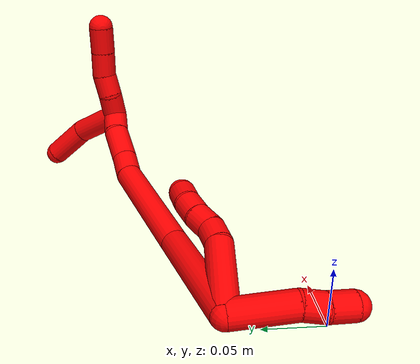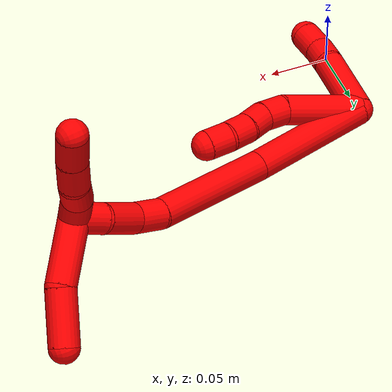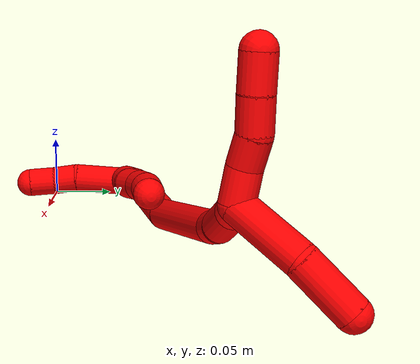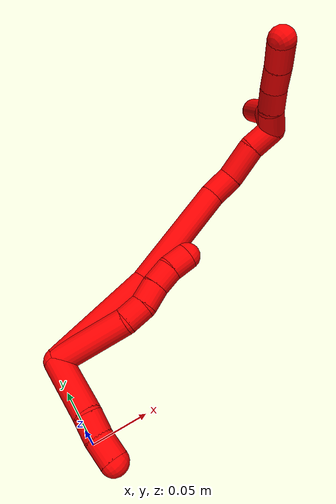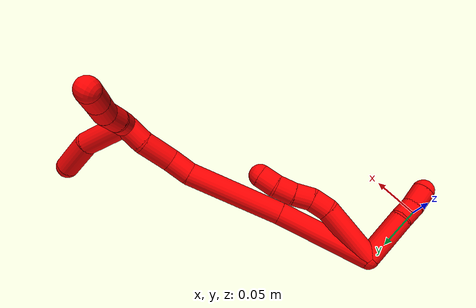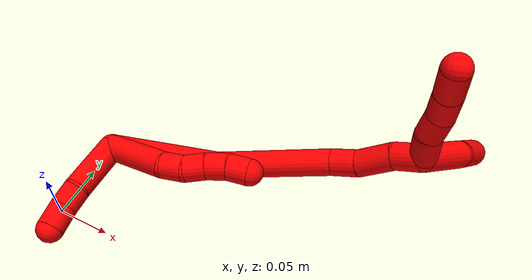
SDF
<sdf version="1.7">
 <world name="default">
  <model name="2">
   <static>0</static>
   <link name="2">
    <collision name="collision-cylinder-e_1_2_8">
     <pose>-0.012205 0.004741 0.031606 -0.148886 -0.364791 0.027511</pose>
     <geometry><cylinder><radius>0.0125</radius><length>0.068421</length></cylinder></geometry>
     <surface>
      <friction><ode><mu>1.16</mu><mu2>1.16</mu2><slip1>0</slip1><slip2>0</slip2></ode></friction>
      <contact><ode><kp>1e+06</kp><kd>1</kd><max_vel>0</max_vel><min_depth>0.001</min_depth></ode></contact>
     </surface>
    </collision>
    <visual name="visual-cylinder-e_1_2_8">
     <pose>-0.012205 0.004741 0.031606 -0.148886 -0.364791 0.027511</pose>
     <geometry><cylinder><radius>0.0125</radius><length>0.068421</length></cylinder></geometry>
     <material><ambient>1 0 0 1</ambient></material>
    </visual>
    <collision name="collision-cylinder-e_2_8_9">
     <pose>-0.025215 0.010417 0.073524 -0.090457 -0.077685 0.003518</pose>
     <geometry><cylinder><radius>0.0125</radius><length>0.020772</length></cylinder></geometry>
     <surface>
      <friction><ode><mu>1.16</mu><mu2>1.16</mu2><slip1>0</slip1><slip2>0</slip2></ode></friction>
      <contact><ode><kp>1e+06</kp><kd>1</kd><max_vel>0</max_vel><min_depth>0.001</min_depth></ode></contact>
     </surface>
    </collision>
    <visual name="visual-cylinder-e_2_8_9">
     <pose>-0.025215 0.010417 0.073524 -0.090457 -0.077685 0.003518</pose>
     <geometry><cylinder><radius>0.0125</radius><length>0.020772</length></cylinder></geometry>
     <material><ambient>1 0 0 1</ambient></material>
    </visual>
    <collision name="collision-cylinder-e_3_9_10">
     <pose>-0.023762 0.013431 0.093607 -0.209628 0.222455 -0.023498</pose>
     <geometry><cylinder><radius>0.0125</radius><length>0.020484</length></cylinder></geometry>
     <surface>
      <friction><ode><mu>1.16</mu><mu2>1.16</mu2><slip1>0</slip1><slip2>0</slip2></ode></friction>
      <contact><ode><kp>1e+06</kp><kd>1</kd><max_vel>0</max_vel><min_depth>0.001</min_depth></ode></contact>
     </surface>
    </collision>
    <visual name="visual-cylinder-e_3_9_10">
     <pose>-0.023762 0.013431 0.093607 -0.209628 0.222455 -0.023498</pose>
     <geometry><cylinder><radius>0.0125</radius><length>0.020484</length></cylinder></geometry>
     <material><ambient>1 0 0 1</ambient></material>
    </visual>
    <collision name="collision-cylinder-e_4_10_11">
     <pose>-0.020814 0.017077 0.113368 -0.155624 0.067905 -0.005297</pose>
     <geometry><cylinder><radius>0.0125</radius><length>0.020271</length></cylinder></geometry>
     <surface>
      <friction><ode><mu>1.16</mu><mu2>1.16</mu2><slip1>0</slip1><slip2>0</slip2></ode></friction>
      <contact><ode><kp>1e+06</kp><kd>1</kd><max_vel>0</max_vel><min_depth>0.001</min_depth></ode></contact>
     </surface>
    </collision>
    <visual name="visual-cylinder-e_4_10_11">
     <pose>-0.020814 0.017077 0.113368 -0.155624 0.067905 -0.005297</pose>
     <geometry><cylinder><radius>0.0125</radius><length>0.020271</length></cylinder></geometry>
     <material><ambient>1 0 0 1</ambient></material>
    </visual>
    <collision name="collision-cylinder-e_5_11_6">
     <pose>-0.020844 0.018422 0.133356 0.022287 -0.071597 -0.000798</pose>
     <geometry><cylinder><radius>0.0125</radius><length>0.020052</length></cylinder></geometry>
     <surface>
      <friction><ode><mu>1.16</mu><mu2>1.16</mu2><slip1>0</slip1><slip2>0</slip2></ode></friction>
      <contact><ode><kp>1e+06</kp><kd>1</kd><max_vel>0</max_vel><min_depth>0.001</min_depth></ode></contact>
     </surface>
    </collision>
    <visual name="visual-cylinder-e_5_11_6">
     <pose>-0.020844 0.018422 0.133356 0.022287 -0.071597 -0.000798</pose>
     <geometry><cylinder><radius>0.0125</radius><length>0.020052</length></cylinder></geometry>
     <material><ambient>1 0 0 1</ambient></material>
    </visual>
    <collision name="collision-cylinder-e_1_2_12">
     <pose>-0.026583 -0.007279 -0.005539 2.22133 -1.23941 -1.92733</pose>
     <geometry><cylinder><radius>0.0125</radius><length>0.056225</length></cylinder></geometry>
     <surface>
      <friction><ode><mu>1.16</mu><mu2>1.16</mu2><slip1>0</slip1><slip2>0</slip2></ode></friction>
      <contact><ode><kp>1e+06</kp><kd>1</kd><max_vel>0</max_vel><min_depth>0.001</min_depth></ode></contact>
     </surface>
    </collision>
    <visual name="visual-cylinder-e_1_2_12">
     <pose>-0.026583 -0.007279 -0.005539 2.22133 -1.23941 -1.92733</pose>
     <geometry><cylinder><radius>0.0125</radius><length>0.056225</length></cylinder></geometry>
     <material><ambient>1 0 0 1</ambient></material>
    </visual>
    <collision name="collision-cylinder-e_2_12_13">
     <pose>-0.061969 -0.019367 -0.013754 2.07842 -1.01208 -1.51149</pose>
     <geometry><cylinder><radius>0.0125</radius><length>0.020764</length></cylinder></geometry>
     <surface>
      <friction><ode><mu>1.16</mu><mu2>1.16</mu2><slip1>0</slip1><slip2>0</slip2></ode></friction>
      <contact><ode><kp>1e+06</kp><kd>1</kd><max_vel>0</max_vel><min_depth>0.001</min_depth></ode></contact>
     </surface>
    </collision>
    <visual name="visual-cylinder-e_2_12_13">
     <pose>-0.061969 -0.019367 -0.013754 2.07842 -1.01208 -1.51149</pose>
     <geometry><cylinder><radius>0.0125</radius><length>0.020764</length></cylinder></geometry>
     <material><ambient>1 0 0 1</ambient></material>
    </visual>
    <collision name="collision-cylinder-e_3_13_5">
     <pose>-0.081246 -0.028734 -0.01781 1.86496 -1.14407 -1.42948</pose>
     <geometry><cylinder><radius>0.0125</radius><length>0.023011</length></cylinder></geometry>
     <surface>
      <friction><ode><mu>1.16</mu><mu2>1.16</mu2><slip1>0</slip1><slip2>0</slip2></ode></friction>
      <contact><ode><kp>1e+06</kp><kd>1</kd><max_vel>0</max_vel><min_depth>0.001</min_depth></ode></contact>
     </surface>
    </collision>
    <visual name="visual-cylinder-e_3_13_5">
     <pose>-0.081246 -0.028734 -0.01781 1.86496 -1.14407 -1.42948</pose>
     <geometry><cylinder><radius>0.0125</radius><length>0.023011</length></cylinder></geometry>
     <material><ambient>1 0 0 1</ambient></material>
    </visual>
    <collision name="collision-cylinder-e_1_2_14">
     <pose>0.002924 -0.000577 0.053054 0.010874 0.055052 0.000299</pose>
     <geometry><cylinder><radius>0.0125</radius><length>0.106275</length></cylinder></geometry>
     <surface>
      <friction><ode><mu>1.16</mu><mu2>1.16</mu2><slip1>0</slip1><slip2>0</slip2></ode></friction>
      <contact><ode><kp>1e+06</kp><kd>1</kd><max_vel>0</max_vel><min_depth>0.001</min_depth></ode></contact>
     </surface>
    </collision>
    <visual name="visual-cylinder-e_1_2_14">
     <pose>0.002924 -0.000577 0.053054 0.010874 0.055052 0.000299</pose>
     <geometry><cylinder><radius>0.0125</radius><length>0.106275</length></cylinder></geometry>
     <material><ambient>1 0 0 1</ambient></material>
    </visual>
    <collision name="collision-cylinder-e_2_14_15">
     <pose>0.010079 0.00975 0.158779 -0.204126 0.078497 -0.008044</pose>
     <geometry><cylinder><radius>0.0125</radius><length>0.107909</length></cylinder></geometry>
     <surface>
      <friction><ode><mu>1.16</mu><mu2>1.16</mu2><slip1>0</slip1><slip2>0</slip2></ode></friction>
      <contact><ode><kp>1e+06</kp><kd>1</kd><max_vel>0</max_vel><min_depth>0.001</min_depth></ode></contact>
     </surface>
    </collision>
    <visual name="visual-cylinder-e_2_14_15">
     <pose>0.010079 0.00975 0.158779 -0.204126 0.078497 -0.008044</pose>
     <geometry><cylinder><radius>0.0125</radius><length>0.107909</length></cylinder></geometry>
     <material><ambient>1 0 0 1</ambient></material>
    </visual>
    <collision name="collision-cylinder-e_3_15_16">
     <pose>0.012383 0.024004 0.22345 -0.272338 -0.153415 0.021061</pose>
     <geometry><cylinder><radius>0.0125</radius><length>0.025213</length></cylinder></geometry>
     <surface>
      <friction><ode><mu>1.16</mu><mu2>1.16</mu2><slip1>0</slip1><slip2>0</slip2></ode></friction>
      <contact><ode><kp>1e+06</kp><kd>1</kd><max_vel>0</max_vel><min_depth>0.001</min_depth></ode></contact>
     </surface>
    </collision>
    <visual name="visual-cylinder-e_3_15_16">
     <pose>0.012383 0.024004 0.22345 -0.272338 -0.153415 0.021061</pose>
     <geometry><cylinder><radius>0.0125</radius><length>0.025213</length></cylinder></geometry>
     <material><ambient>1 0 0 1</ambient></material>
    </visual>
    <collision name="collision-cylinder-e_4_16_17">
     <pose>0.008235 0.036196 0.250255 -0.538302 -0.128114 0.035384</pose>
     <geometry><cylinder><radius>0.0125</radius><length>0.034774</length></cylinder></geometry>
     <surface>
      <friction><ode><mu>1.16</mu><mu2>1.16</mu2><slip1>0</slip1><slip2>0</slip2></ode></friction>
      <contact><ode><kp>1e+06</kp><kd>1</kd><max_vel>0</max_vel><min_depth>0.001</min_depth></ode></contact>
     </surface>
    </collision>
    <visual name="visual-cylinder-e_4_16_17">
     <pose>0.008235 0.036196 0.250255 -0.538302 -0.128114 0.035384</pose>
     <geometry><cylinder><radius>0.0125</radius><length>0.034774</length></cylinder></geometry>
     <material><ambient>1 0 0 1</ambient></material>
    </visual>
    <collision name="collision-cylinder-e_5_17_1">
     <pose>0.002226 0.049232 0.276673 -0.34668 -0.297718 0.052506</pose>
     <geometry><cylinder><radius>0.0125</radius><length>0.025829</length></cylinder></geometry>
     <surface>
      <friction><ode><mu>1.16</mu><mu2>1.16</mu2><slip1>0</slip1><slip2>0</slip2></ode></friction>
      <contact><ode><kp>1e+06</kp><kd>1</kd><max_vel>0</max_vel><min_depth>0.001</min_depth></ode></contact>
     </surface>
    </collision>
    <visual name="visual-cylinder-e_5_17_1">
     <pose>0.002226 0.049232 0.276673 -0.34668 -0.297718 0.052506</pose>
     <geometry><cylinder><radius>0.0125</radius><length>0.025829</length></cylinder></geometry>
     <material><ambient>1 0 0 1</ambient></material>
    </visual>
    <collision name="collision-cylinder-e_1_1_18">
     <pose>-0.003456 0.065913 0.288271 -1.57188 -0.150517 0.150679</pose>
     <geometry><cylinder><radius>0.0125</radius><length>0.025256</length></cylinder></geometry>
     <surface>
      <friction><ode><mu>1.16</mu><mu2>1.16</mu2><slip1>0</slip1><slip2>0</slip2></ode></friction>
      <contact><ode><kp>1e+06</kp><kd>1</kd><max_vel>0</max_vel><min_depth>0.001</min_depth></ode></contact>
     </surface>
    </collision>
    <visual name="visual-cylinder-e_1_1_18">
     <pose>-0.003456 0.065913 0.288271 -1.57188 -0.150517 0.150679</pose>
     <geometry><cylinder><radius>0.0125</radius><length>0.025256</length></cylinder></geometry>
     <material><ambient>1 0 0 1</ambient></material>
    </visual>
    <collision name="collision-cylinder-e_2_18_19">
     <pose>-0.006827 0.089194 0.290848 -1.3353 -0.13225 0.104329</pose>
     <geometry><cylinder><radius>0.0125</radius><length>0.022401</length></cylinder></geometry>
     <surface>
      <friction><ode><mu>1.16</mu><mu2>1.16</mu2><slip1>0</slip1><slip2>0</slip2></ode></friction>
      <contact><ode><kp>1e+06</kp><kd>1</kd><max_vel>0</max_vel><min_depth>0.001</min_depth></ode></contact>
     </surface>
    </collision>
    <visual name="visual-cylinder-e_2_18_19">
     <pose>-0.006827 0.089194 0.290848 -1.3353 -0.13225 0.104329</pose>
     <geometry><cylinder><radius>0.0125</radius><length>0.022401</length></cylinder></geometry>
     <material><ambient>1 0 0 1</ambient></material>
    </visual>
    <collision name="collision-cylinder-e_3_19_20">
     <pose>-0.012514 0.111936 0.294129 -1.51311 -0.338362 0.319716</pose>
     <geometry><cylinder><radius>0.0125</radius><length>0.025369</length></cylinder></geometry>
     <surface>
      <friction><ode><mu>1.16</mu><mu2>1.16</mu2><slip1>0</slip1><slip2>0</slip2></ode></friction>
      <contact><ode><kp>1e+06</kp><kd>1</kd><max_vel>0</max_vel><min_depth>0.001</min_depth></ode></contact>
     </surface>
    </collision>
    <visual name="visual-cylinder-e_3_19_20">
     <pose>-0.012514 0.111936 0.294129 -1.51311 -0.338362 0.319716</pose>
     <geometry><cylinder><radius>0.0125</radius><length>0.025369</length></cylinder></geometry>
     <material><ambient>1 0 0 1</ambient></material>
    </visual>
    <collision name="collision-cylinder-e_4_20_4">
     <pose>-0.020789 0.136741 0.294935 -1.5617 -0.306124 0.303395</pose>
     <geometry><cylinder><radius>0.0125</radius><length>0.026974</length></cylinder></geometry>
     <surface>
      <friction><ode><mu>1.16</mu><mu2>1.16</mu2><slip1>0</slip1><slip2>0</slip2></ode></friction>
      <contact><ode><kp>1e+06</kp><kd>1</kd><max_vel>0</max_vel><min_depth>0.001</min_depth></ode></contact>
     </surface>
    </collision>
    <visual name="visual-cylinder-e_4_20_4">
     <pose>-0.020789 0.136741 0.294935 -1.5617 -0.306124 0.303395</pose>
     <geometry><cylinder><radius>0.0125</radius><length>0.026974</length></cylinder></geometry>
     <material><ambient>1 0 0 1</ambient></material>
    </visual>
    <collision name="collision-cylinder-e_1_1_21">
     <pose>0.018397 0.045768 0.304923 0.43143 0.828319 0.192055</pose>
     <geometry><cylinder><radius>0.0125</radius><length>0.054181</length></cylinder></geometry>
     <surface>
      <friction><ode><mu>1.16</mu><mu2>1.16</mu2><slip1>0</slip1><slip2>0</slip2></ode></friction>
      <contact><ode><kp>1e+06</kp><kd>1</kd><max_vel>0</max_vel><min_depth>0.001</min_depth></ode></contact>
     </surface>
    </collision>
    <visual name="visual-cylinder-e_1_1_21">
     <pose>0.018397 0.045768 0.304923 0.43143 0.828319 0.192055</pose>
     <geometry><cylinder><radius>0.0125</radius><length>0.054181</length></cylinder></geometry>
     <material><ambient>1 0 0 1</ambient></material>
    </visual>
    <collision name="collision-cylinder-e_2_21_3">
     <pose>0.057413 0.028265 0.329613 0.885155 0.982283 0.496513</pose>
     <geometry><cylinder><radius>0.0125</radius><length>0.045819</length></cylinder></geometry>
     <surface>
      <friction><ode><mu>1.16</mu><mu2>1.16</mu2><slip1>0</slip1><slip2>0</slip2></ode></friction>
      <contact><ode><kp>1e+06</kp><kd>1</kd><max_vel>0</max_vel><min_depth>0.001</min_depth></ode></contact>
     </surface>
    </collision>
    <visual name="visual-cylinder-e_2_21_3">
     <pose>0.057413 0.028265 0.329613 0.885155 0.982283 0.496513</pose>
     <geometry><cylinder><radius>0.0125</radius><length>0.045819</length></cylinder></geometry>
     <material><ambient>1 0 0 1</ambient></material>
    </visual>
    <collision name="collision-sphere-3">
     <pose>0.076468 0.018421 0.337666 0 -0 0</pose>
     <geometry><sphere><radius>0.0125</radius></sphere></geometry>
     <surface>
      <friction><ode><mu>1.16</mu><mu2>1.16</mu2><slip1>0</slip1><slip2>0</slip2></ode></friction>
      <contact><ode><kp>1e+06</kp><kd>1</kd><max_vel>0</max_vel><min_depth>0.001</min_depth></ode></contact>
     </surface>
    </collision>
    <visual name="visual-sphere-3">
     <pose>0.076468 0.018421 0.337666 0 -0 0</pose>
     <geometry><sphere><radius>0.0125</radius></sphere></geometry>
     <material><ambient>1 0 0 1</ambient></material>
    </visual>
    <collision name="collision-sphere-21">
     <pose>0.038358 0.038109 0.321561 0 -0 0</pose>
     <geometry><sphere><radius>0.0125</radius></sphere></geometry>
     <surface>
      <friction><ode><mu>1.16</mu><mu2>1.16</mu2><slip1>0</slip1><slip2>0</slip2></ode></friction>
      <contact><ode><kp>1e+06</kp><kd>1</kd><max_vel>0</max_vel><min_depth>0.001</min_depth></ode></contact>
     </surface>
    </collision>
    <visual name="visual-sphere-21">
     <pose>0.038358 0.038109 0.321561 0 -0 0</pose>
     <geometry><sphere><radius>0.0125</radius></sphere></geometry>
     <material><ambient>1 0 0 1</ambient></material>
    </visual>
    <collision name="collision-sphere-4">
     <pose>-0.024854 0.1496 0.295052 0 -0 0</pose>
     <geometry><sphere><radius>0.0125</radius></sphere></geometry>
     <surface>
      <friction><ode><mu>1.16</mu><mu2>1.16</mu2><slip1>0</slip1><slip2>0</slip2></ode></friction>
      <contact><ode><kp>1e+06</kp><kd>1</kd><max_vel>0</max_vel><min_depth>0.001</min_depth></ode></contact>
     </surface>
    </collision>
    <visual name="visual-sphere-4">
     <pose>-0.024854 0.1496 0.295052 0 -0 0</pose>
     <geometry><sphere><radius>0.0125</radius></sphere></geometry>
     <material><ambient>1 0 0 1</ambient></material>
    </visual>
    <collision name="collision-sphere-20">
     <pose>-0.016725 0.123881 0.294818 0 -0 0</pose>
     <geometry><sphere><radius>0.0125</radius></sphere></geometry>
     <surface>
      <friction><ode><mu>1.16</mu><mu2>1.16</mu2><slip1>0</slip1><slip2>0</slip2></ode></friction>
      <contact><ode><kp>1e+06</kp><kd>1</kd><max_vel>0</max_vel><min_depth>0.001</min_depth></ode></contact>
     </surface>
    </collision>
    <visual name="visual-sphere-20">
     <pose>-0.016725 0.123881 0.294818 0 -0 0</pose>
     <geometry><sphere><radius>0.0125</radius></sphere></geometry>
     <material><ambient>1 0 0 1</ambient></material>
    </visual>
    <collision name="collision-sphere-6">
     <pose>-0.021561 0.018199 0.143354 0 -0 0</pose>
     <geometry><sphere><radius>0.0125</radius></sphere></geometry>
     <surface>
      <friction><ode><mu>1.16</mu><mu2>1.16</mu2><slip1>0</slip1><slip2>0</slip2></ode></friction>
      <contact><ode><kp>1e+06</kp><kd>1</kd><max_vel>0</max_vel><min_depth>0.001</min_depth></ode></contact>
     </surface>
    </collision>
    <visual name="visual-sphere-6">
     <pose>-0.021561 0.018199 0.143354 0 -0 0</pose>
     <geometry><sphere><radius>0.0125</radius></sphere></geometry>
     <material><ambient>1 0 0 1</ambient></material>
    </visual>
    <collision name="collision-sphere-11">
     <pose>-0.020127 0.018645 0.123358 0 -0 0</pose>
     <geometry><sphere><radius>0.0125</radius></sphere></geometry>
     <surface>
      <friction><ode><mu>1.16</mu><mu2>1.16</mu2><slip1>0</slip1><slip2>0</slip2></ode></friction>
      <contact><ode><kp>1e+06</kp><kd>1</kd><max_vel>0</max_vel><min_depth>0.001</min_depth></ode></contact>
     </surface>
    </collision>
    <visual name="visual-sphere-11">
     <pose>-0.020127 0.018645 0.123358 0 -0 0</pose>
     <geometry><sphere><radius>0.0125</radius></sphere></geometry>
     <material><ambient>1 0 0 1</ambient></material>
    </visual>
    <collision name="collision-sphere-10">
     <pose>-0.021502 0.01551 0.103378 0 -0 0</pose>
     <geometry><sphere><radius>0.0125</radius></sphere></geometry>
     <surface>
      <friction><ode><mu>1.16</mu><mu2>1.16</mu2><slip1>0</slip1><slip2>0</slip2></ode></friction>
      <contact><ode><kp>1e+06</kp><kd>1</kd><max_vel>0</max_vel><min_depth>0.001</min_depth></ode></contact>
     </surface>
    </collision>
    <visual name="visual-sphere-10">
     <pose>-0.021502 0.01551 0.103378 0 -0 0</pose>
     <geometry><sphere><radius>0.0125</radius></sphere></geometry>
     <material><ambient>1 0 0 1</ambient></material>
    </visual>
    <collision name="collision-sphere-9">
     <pose>-0.026021 0.011352 0.083836 0 -0 0</pose>
     <geometry><sphere><radius>0.0125</radius></sphere></geometry>
     <surface>
      <friction><ode><mu>1.16</mu><mu2>1.16</mu2><slip1>0</slip1><slip2>0</slip2></ode></friction>
      <contact><ode><kp>1e+06</kp><kd>1</kd><max_vel>0</max_vel><min_depth>0.001</min_depth></ode></contact>
     </surface>
    </collision>
    <visual name="visual-sphere-9">
     <pose>-0.026021 0.011352 0.083836 0 -0 0</pose>
     <geometry><sphere><radius>0.0125</radius></sphere></geometry>
     <material><ambient>1 0 0 1</ambient></material>
    </visual>
    <collision name="collision-sphere-2">
     <geometry><sphere><radius>0.0125</radius></sphere></geometry>
     <surface>
      <friction><ode><mu>1.16</mu><mu2>1.16</mu2><slip1>0</slip1><slip2>0</slip2></ode></friction>
      <contact><ode><kp>1e+06</kp><kd>1</kd><max_vel>0</max_vel><min_depth>0.001</min_depth></ode></contact>
     </surface>
    </collision>
    <visual name="visual-sphere-2">
     <geometry><sphere><radius>0.0125</radius></sphere></geometry>
     <material><ambient>1 0 0 1</ambient></material>
    </visual>
    <collision name="collision-sphere-19">
     <pose>-0.008304 0.09999 0.293439 0 -0 0</pose>
     <geometry><sphere><radius>0.0125</radius></sphere></geometry>
     <surface>
      <friction><ode><mu>1.16</mu><mu2>1.16</mu2><slip1>0</slip1><slip2>0</slip2></ode></friction>
      <contact><ode><kp>1e+06</kp><kd>1</kd><max_vel>0</max_vel><min_depth>0.001</min_depth></ode></contact>
     </surface>
    </collision>
    <visual name="visual-sphere-19">
     <pose>-0.008304 0.09999 0.293439 0 -0 0</pose>
     <geometry><sphere><radius>0.0125</radius></sphere></geometry>
     <material><ambient>1 0 0 1</ambient></material>
    </visual>
    <collision name="collision-sphere-8">
     <pose>-0.024409 0.009481 0.063211 0 -0 0</pose>
     <geometry><sphere><radius>0.0125</radius></sphere></geometry>
     <surface>
      <friction><ode><mu>1.16</mu><mu2>1.16</mu2><slip1>0</slip1><slip2>0</slip2></ode></friction>
      <contact><ode><kp>1e+06</kp><kd>1</kd><max_vel>0</max_vel><min_depth>0.001</min_depth></ode></contact>
     </surface>
    </collision>
    <visual name="visual-sphere-8">
     <pose>-0.024409 0.009481 0.063211 0 -0 0</pose>
     <geometry><sphere><radius>0.0125</radius></sphere></geometry>
     <material><ambient>1 0 0 1</ambient></material>
    </visual>
    <collision name="collision-sphere-12">
     <pose>-0.053166 -0.014557 -0.011079 0 -0 0</pose>
     <geometry><sphere><radius>0.0125</radius></sphere></geometry>
     <surface>
      <friction><ode><mu>1.16</mu><mu2>1.16</mu2><slip1>0</slip1><slip2>0</slip2></ode></friction>
      <contact><ode><kp>1e+06</kp><kd>1</kd><max_vel>0</max_vel><min_depth>0.001</min_depth></ode></contact>
     </surface>
    </collision>
    <visual name="visual-sphere-12">
     <pose>-0.053166 -0.014557 -0.011079 0 -0 0</pose>
     <geometry><sphere><radius>0.0125</radius></sphere></geometry>
     <material><ambient>1 0 0 1</ambient></material>
    </visual>
    <collision name="collision-sphere-13">
     <pose>-0.070773 -0.024176 -0.016429 0 -0 0</pose>
     <geometry><sphere><radius>0.0125</radius></sphere></geometry>
     <surface>
      <friction><ode><mu>1.16</mu><mu2>1.16</mu2><slip1>0</slip1><slip2>0</slip2></ode></friction>
      <contact><ode><kp>1e+06</kp><kd>1</kd><max_vel>0</max_vel><min_depth>0.001</min_depth></ode></contact>
     </surface>
    </collision>
    <visual name="visual-sphere-13">
     <pose>-0.070773 -0.024176 -0.016429 0 -0 0</pose>
     <geometry><sphere><radius>0.0125</radius></sphere></geometry>
     <material><ambient>1 0 0 1</ambient></material>
    </visual>
    <collision name="collision-sphere-5">
     <pose>-0.09172 -0.033291 -0.01919 0 -0 0</pose>
     <geometry><sphere><radius>0.0125</radius></sphere></geometry>
     <surface>
      <friction><ode><mu>1.16</mu><mu2>1.16</mu2><slip1>0</slip1><slip2>0</slip2></ode></friction>
      <contact><ode><kp>1e+06</kp><kd>1</kd><max_vel>0</max_vel><min_depth>0.001</min_depth></ode></contact>
     </surface>
    </collision>
    <visual name="visual-sphere-5">
     <pose>-0.09172 -0.033291 -0.01919 0 -0 0</pose>
     <geometry><sphere><radius>0.0125</radius></sphere></geometry>
     <material><ambient>1 0 0 1</ambient></material>
    </visual>
    <collision name="collision-sphere-14">
     <pose>0.005848 -0.001154 0.106108 0 -0 0</pose>
     <geometry><sphere><radius>0.0125</radius></sphere></geometry>
     <surface>
      <friction><ode><mu>1.16</mu><mu2>1.16</mu2><slip1>0</slip1><slip2>0</slip2></ode></friction>
      <contact><ode><kp>1e+06</kp><kd>1</kd><max_vel>0</max_vel><min_depth>0.001</min_depth></ode></contact>
     </surface>
    </collision>
    <visual name="visual-sphere-14">
     <pose>0.005848 -0.001154 0.106108 0 -0 0</pose>
     <geometry><sphere><radius>0.0125</radius></sphere></geometry>
     <material><ambient>1 0 0 1</ambient></material>
    </visual>
    <collision name="collision-sphere-15">
     <pose>0.01431 0.020653 0.211451 0 -0 0</pose>
     <geometry><sphere><radius>0.0125</radius></sphere></geometry>
     <surface>
      <friction><ode><mu>1.16</mu><mu2>1.16</mu2><slip1>0</slip1><slip2>0</slip2></ode></friction>
      <contact><ode><kp>1e+06</kp><kd>1</kd><max_vel>0</max_vel><min_depth>0.001</min_depth></ode></contact>
     </surface>
    </collision>
    <visual name="visual-sphere-15">
     <pose>0.01431 0.020653 0.211451 0 -0 0</pose>
     <geometry><sphere><radius>0.0125</radius></sphere></geometry>
     <material><ambient>1 0 0 1</ambient></material>
    </visual>
    <collision name="collision-sphere-16">
     <pose>0.010457 0.027355 0.235449 0 -0 0</pose>
     <geometry><sphere><radius>0.0125</radius></sphere></geometry>
     <surface>
      <friction><ode><mu>1.16</mu><mu2>1.16</mu2><slip1>0</slip1><slip2>0</slip2></ode></friction>
      <contact><ode><kp>1e+06</kp><kd>1</kd><max_vel>0</max_vel><min_depth>0.001</min_depth></ode></contact>
     </surface>
    </collision>
    <visual name="visual-sphere-16">
     <pose>0.010457 0.027355 0.235449 0 -0 0</pose>
     <geometry><sphere><radius>0.0125</radius></sphere></geometry>
     <material><ambient>1 0 0 1</ambient></material>
    </visual>
    <collision name="collision-sphere-17">
     <pose>0.006014 0.045037 0.265061 0 -0 0</pose>
     <geometry><sphere><radius>0.0125</radius></sphere></geometry>
     <surface>
      <friction><ode><mu>1.16</mu><mu2>1.16</mu2><slip1>0</slip1><slip2>0</slip2></ode></friction>
      <contact><ode><kp>1e+06</kp><kd>1</kd><max_vel>0</max_vel><min_depth>0.001</min_depth></ode></contact>
     </surface>
    </collision>
    <visual name="visual-sphere-17">
     <pose>0.006014 0.045037 0.265061 0 -0 0</pose>
     <geometry><sphere><radius>0.0125</radius></sphere></geometry>
     <material><ambient>1 0 0 1</ambient></material>
    </visual>
    <collision name="collision-sphere-1">
     <pose>-0.001563 0.053427 0.288285 0 -0 0</pose>
     <geometry><sphere><radius>0.0125</radius></sphere></geometry>
     <surface>
      <friction><ode><mu>1.16</mu><mu2>1.16</mu2><slip1>0</slip1><slip2>0</slip2></ode></friction>
      <contact><ode><kp>1e+06</kp><kd>1</kd><max_vel>0</max_vel><min_depth>0.001</min_depth></ode></contact>
     </surface>
    </collision>
    <visual name="visual-sphere-1">
     <pose>-0.001563 0.053427 0.288285 0 -0 0</pose>
     <geometry><sphere><radius>0.0125</radius></sphere></geometry>
     <material><ambient>1 0 0 1</ambient></material>
    </visual>
    <collision name="collision-sphere-18">
     <pose>-0.00535 0.078398 0.288258 0 -0 0</pose>
     <geometry><sphere><radius>0.0125</radius></sphere></geometry>
     <surface>
      <friction><ode><mu>1.16</mu><mu2>1.16</mu2><slip1>0</slip1><slip2>0</slip2></ode></friction>
      <contact><ode><kp>1e+06</kp><kd>1</kd><max_vel>0</max_vel><min_depth>0.001</min_depth></ode></contact>
     </surface>
    </collision>
    <visual name="visual-sphere-18">
     <pose>-0.00535 0.078398 0.288258 0 -0 0</pose>
     <geometry><sphere><radius>0.0125</radius></sphere></geometry>
     <material><ambient>1 0 0 1</ambient></material>
    </visual>
    <inertial>
     <pose>-0.003697 0.024201 0.152885 0 -0 0</pose>
     <mass>0.75</mass>
     <inertia>
      <ixx>0.000273</ixx>
      <ixy>0</ixy>
      <ixz>0</ixz>
      <iyy>0.000305</iyy>
      <iyz>0</iyz>
      <izz>1.2e-05</izz>
     </inertia>
    </inertial>
   </link>
   <pose>0.004933 0.07626 0.01137 1.53927 0.348045 1.79378</pose>
  </model>
 </world>
</sdf>
